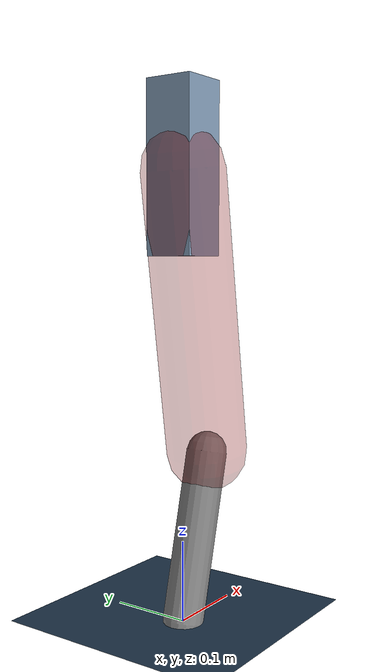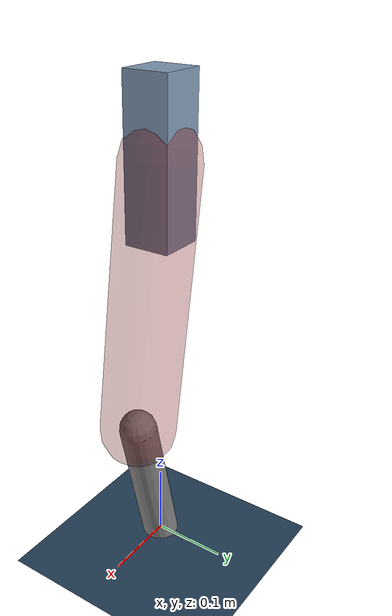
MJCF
<mujoco model="Hopper2D">
	<compiler inertiafromgeom="true" angle="radian" />
	<option timestep="0.001" integrator="implicit" cone="elliptic" solver="Newton" tolerance="1e-10" />

	<default>
		<geom contype="1" conaffinity="1" condim="3" friction="2 0.005 0.0001" solref="0.005 1" />
		<joint limited="true" damping="0.1" />
	</default>

	<asset>
		<texture name="skybox" type="skybox" builtin="gradient" rgb1=".4 .6 .8" rgb2="0 0 0" width="800" height="800" />
		<texture name="grid" type="2d" builtin="checker" rgb1=".1 .2 .3" rgb2=".2 .3 .4" width="300" height="300" mark="edge" markrgb=".2 .3 .4" />
		<material name="ground" texture="grid" texrepeat="1 1" texuniform="true" reflectance="0.1" />
		<material name="leg" rgba="0.5 0.6 0.7 1" />
	</asset>

	<worldbody>

		<geom name="floor" type="plane" size="5 5 0.25" material="ground" />

		<light directional="false" diffuse="0.8 0.8 0.8" specular="0.3 0.3 0.3" pos="0 0 2" dir="0 0 -1" />
		<light mode="targetbodycom" target="base" directional="false" diffuse="0.8 0.8 0.8" specular="0.3 0.3 0.3" pos="0 0 2" dir="0 0 -1" />

		<camera name="fixed" pos="0 -2 1" xyaxes="1 0 0 0 0 1" />
		<camera name="tracking" mode="trackcom" pos="0 -3 1" />

		<body name="root" pos="0 0 0.5446937084753637">
			<joint name="slide_x" type="slide" axis="1 0 0" range="-100 100" />
			<joint name="slide_z" type="slide" axis="0 0 1" range="0 10" />

			<body name="base" pos="0 0 0">
				<geom name="torso" type="box" size="0.03 0.03 0.1" mass="2.1470000000000002" material="leg" />

				<body name="link1" pos="0 0 0" euler="0 1.422876486476895 0">
					<joint type="hinge" axis="0 -1 0" pos="0 0 0" name="hinge1" limited="true" range="-3.14 3.14" stiffness="0" damping="0.1" />
					<geom name="thigh" type="capsule" fromto="0 0 0 0.34467514956607254 0 0" size="0.05" rgba="0.5 0 0 0.3" mass="1.1116904187850032" />

					<body name="link2" pos="0.34467514956607254 0 0" euler="0 0.39221923556759086 0">
						<joint type="hinge" axis="0 -1 0" pos="0 0 0" name="hinge2" limited="true" range="-3.14 3.14" stiffness="0" damping="0.1" />
						<geom name="shank" type="capsule" fromto="0 0 0 0.2100185589092912 0 0" size="0.025" mass="0.40931484712743293" />

					</body>
				</body>
			</body>
		</body>
	</worldbody>

	<actuator>
		<motor name="torque1" joint="hinge1" ctrlrange="-100.66397300561344 100.66397300561344" ctrllimited="true" gear="1" />
		<motor name="torque2" joint="hinge2" ctrlrange="-65.71806014802598 65.71806014802598" ctrllimited="true" gear="1" />
	</actuator>
</mujoco>
